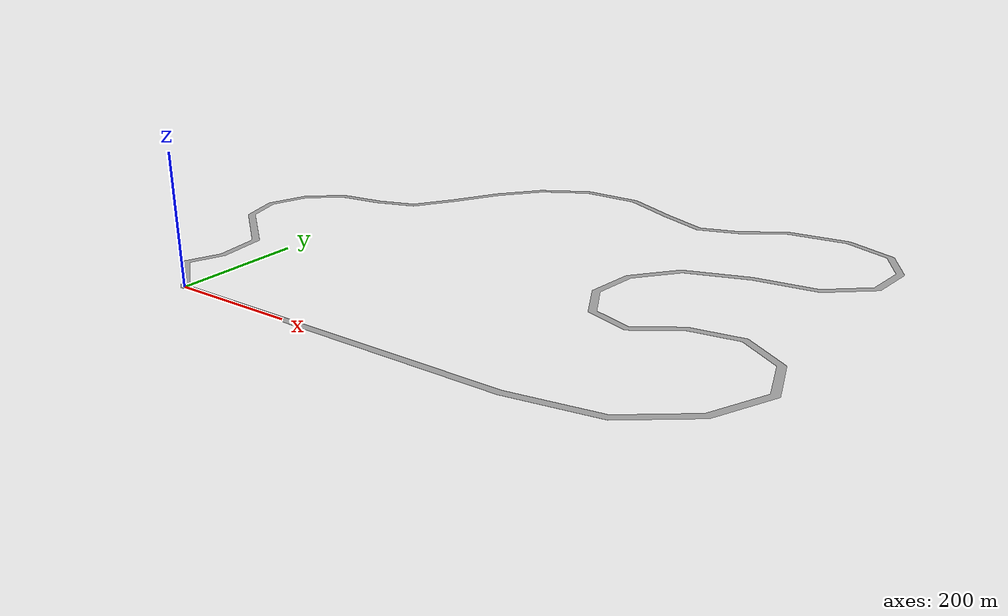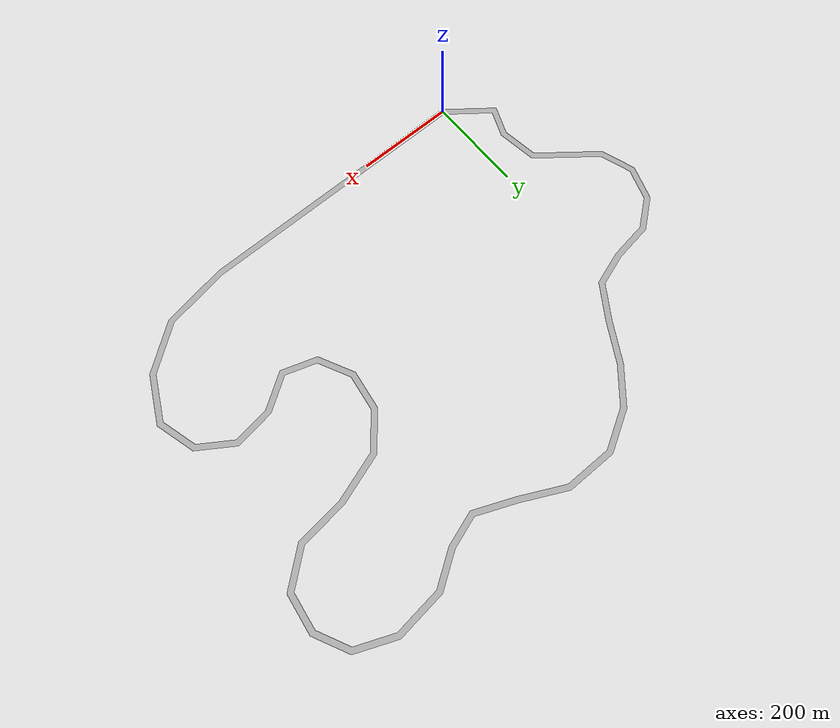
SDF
<?xml version="1.0" ?>
<sdf version="1.9">
  <model name="silesia_ring">
    <static>true</static>
    <link name="track">
      <!-- Simplified, scaled track ribbon: 3,636 m centreline and 12 m nominal width.
           This is not a survey-grade reconstruction; replace with surveyed/CAD geometry when available. -->
      <visual name="track_surface">
        <pose>0 0 0 0 0 0</pose>
        <geometry>
          <mesh>
            <uri>model://silesia_ring/meshes/silesia_ring.obj</uri>
          </mesh>
        </geometry>
      </visual>
      <collision name="track_surface_collision">
        <pose>0 0 0 0 0 0</pose>
        <geometry>
          <mesh>
            <uri>model://silesia_ring/meshes/silesia_ring.obj</uri>
          </mesh>
        </geometry>
        <surface>
          <friction>
            <ode><mu>1.0</mu><mu2>1.0</mu2></ode>
          </friction>
        </surface>
      </collision>
    </link>
  </model>
</sdf>
